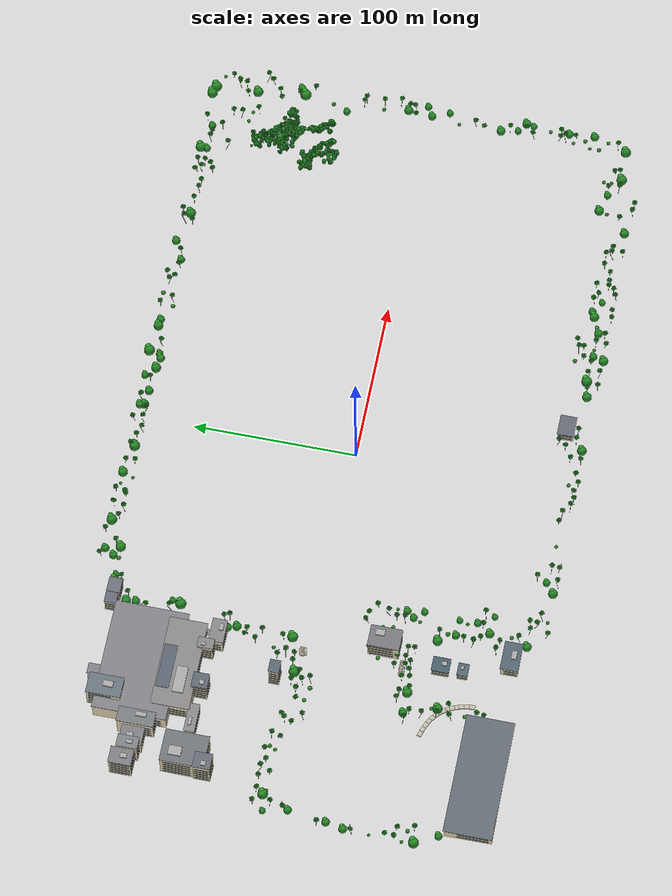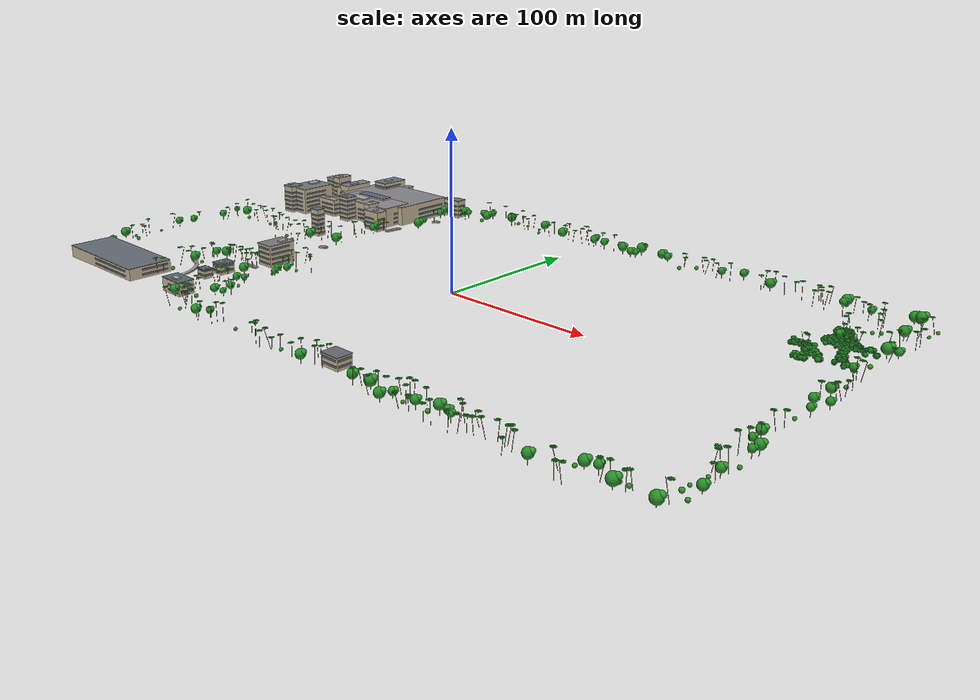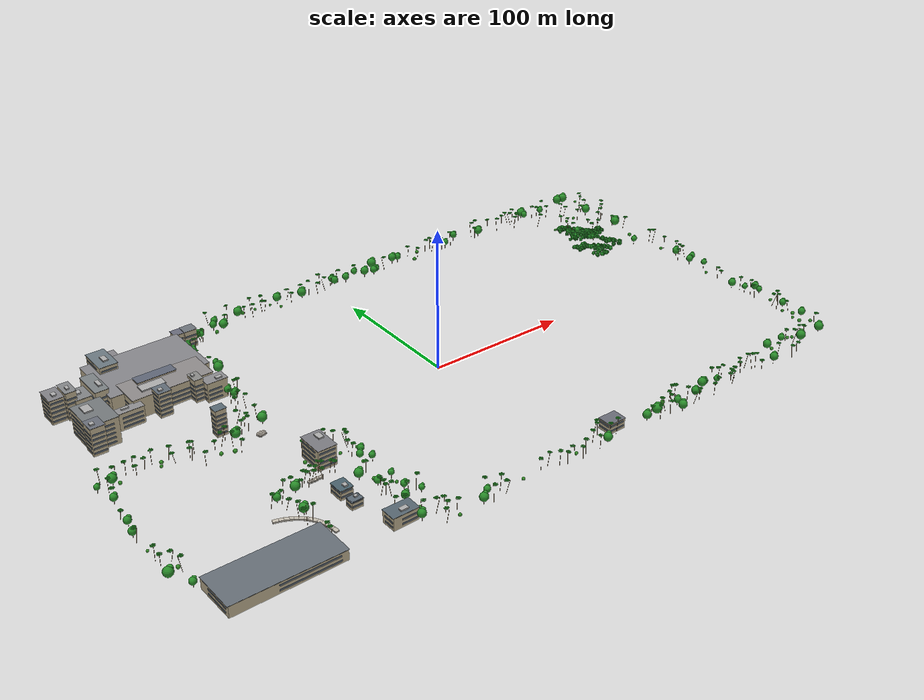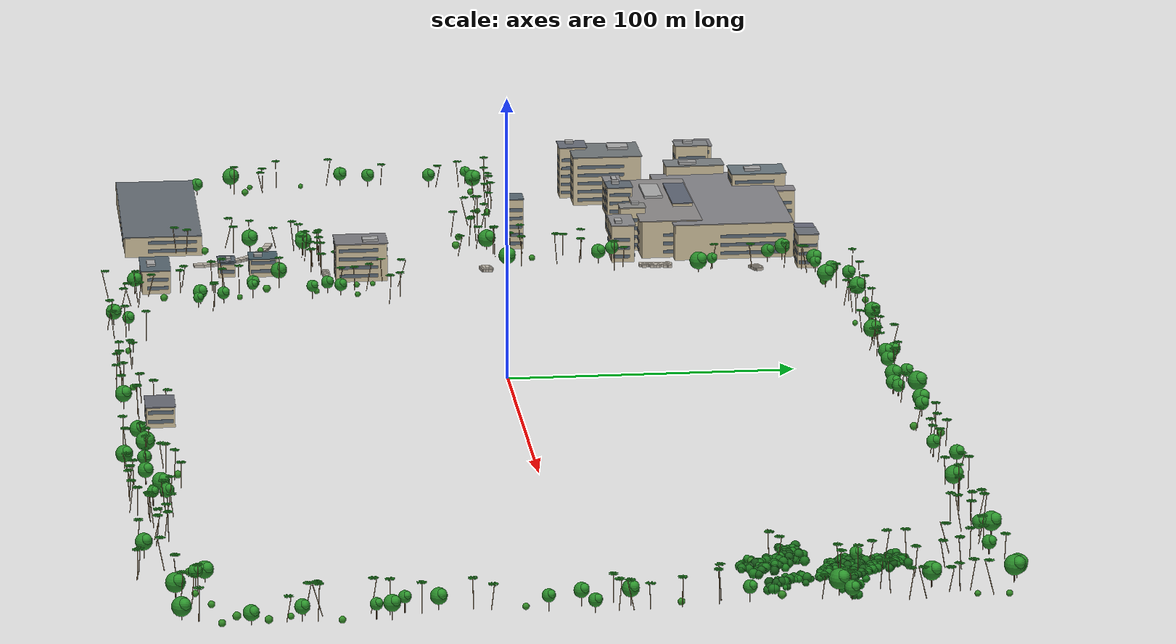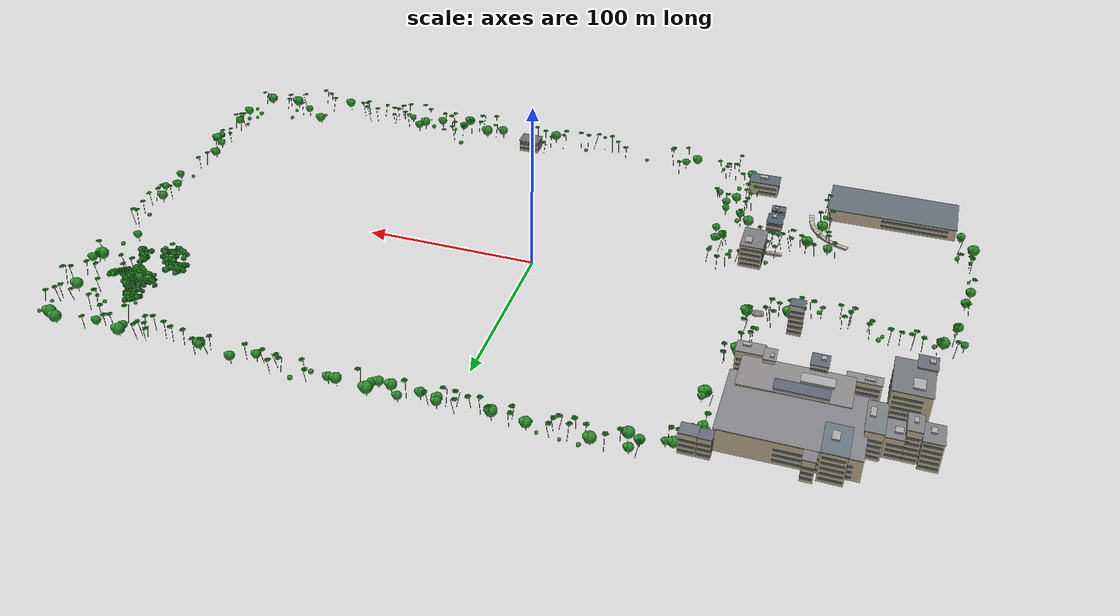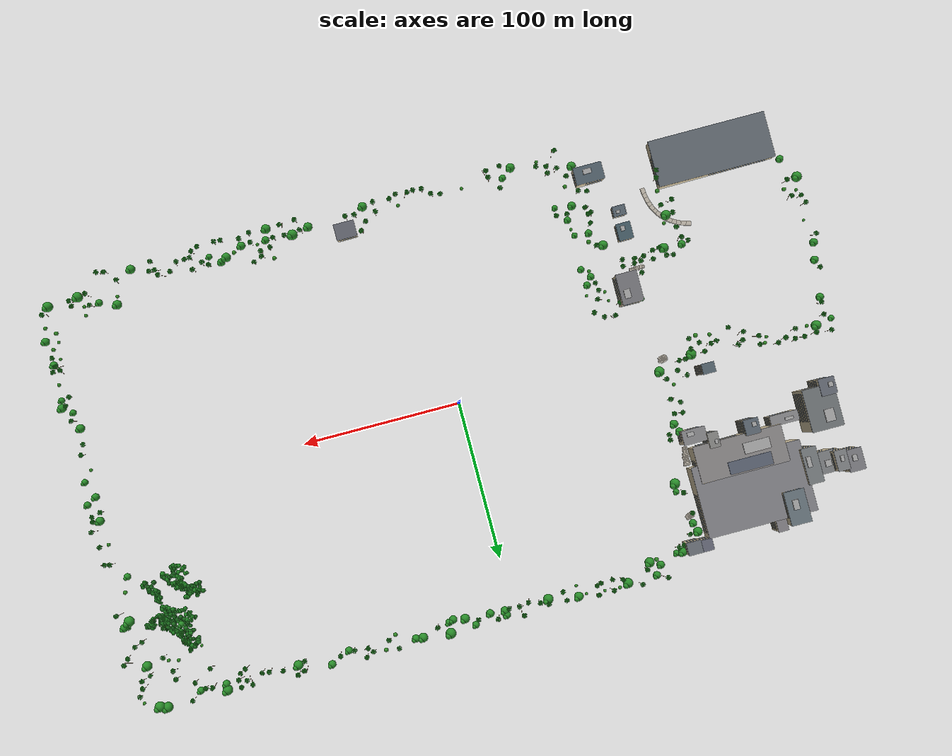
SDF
<sdf version="1.9">
 <world name="dongpo_lake">
  <physics name="4ms" type="dart">
   <max_step_size>0.004</max_step_size>
   <real_time_factor>1.0</real_time_factor>
   <dart><collision_detector>bullet</collision_detector></dart>
  </physics>
  <plugin filename="gz-sim-physics-system" name="gz::sim::systems::Physics"/>
  <plugin filename="gz-sim-user-commands-system" name="gz::sim::systems::UserCommands"/>
  <plugin filename="gz-sim-sensors-system" name="gz::sim::systems::Sensors">
   <render_engine>ogre2</render_engine>
   <disable_on_drained_battery>true</disable_on_drained_battery>
  </plugin>
  <plugin filename="gz-sim-imu-system" name="gz::sim::systems::Imu"/>
  <plugin filename="gz-sim-magnetometer-system" name="gz::sim::systems::Magnetometer"/>
  <plugin filename="gz-sim-forcetorque-system" name="gz::sim::systems::ForceTorque"/>
  <plugin filename="gz-sim-particle-emitter-system" name="gz::sim::systems::ParticleEmitter"/>
  <plugin filename="gz-sim-scene-broadcaster-system" name="gz::sim::systems::SceneBroadcaster"/>
  <plugin filename="gz-sim-contact-system" name="gz::sim::systems::Contact"/>
  <plugin filename="gz-sim-navsat-system" name="gz::sim::systems::NavSat"/>
  <scene>
   <grid>false</grid>
   <ambient>1.0 1.0 1.0</ambient>
   <background>0.8 0.8 0.8</background>
   <fog><color>0.8 0.83 0.86</color><type>linear</type><density>0.0012</density></fog>
  </scene>
  <spherical_coordinates>
   <surface_model>EARTH_WGS84</surface_model>
   <world_frame_orientation>ENU</world_frame_orientation>
   <latitude_deg>20.06108569</latitude_deg>
   <longitude_deg>110.33098135</longitude_deg>
   <elevation>0.0</elevation>
   <heading_deg>0.0</heading_deg>
  </spherical_coordinates>
  <light type="directional" name="sun">
   <pose>0 0 10 0 0 0</pose>
   <diffuse>0.8 0.8 0.8</diffuse>
   <specular>0.2 0.2 0.2 1</specular>
   <attenuation>
    <range>1000</range>
    <constant>0.9</constant>
    <linear>0.01</linear>
    <quadratic>0.001</quadratic>
   </attenuation>
   <direction>-0.5 0.1 -0.9</direction>
  </light>
  <include><name>Shore Trees</name><uri>model://dongpo_shore_trees</uri></include>
  <include><name>Campus Buildings</name><uri>model://dongpo_buildings</uri></include>
  <include><name>Mangroves</name><uri>model://dongpo_mangrove</uri></include>
  <include><name>Jetties</name><uri>model://dongpo_jetties</uri></include>
  <plugin filename="libPublisherPlugin.so" name="vrx::PublisherPlugin">
   <message type="gz.msgs.Param" topic="/vrx/wavefield/parameters" every="2.0">params {
          key: "direction"
          value {
            type: DOUBLE
            double_value: 0.0
          }
        }
        params {
          key: "gain"
          value {
            type: DOUBLE
            double_value: 0.15
          }
        }
        params {
          key: "period"
          value {
            type: DOUBLE
            double_value: 3.0
          }
        }
        params {
          key: "steepness"
          value {
            type: DOUBLE
            double_value: 0.0
          }
        }</message>
  </plugin>
 </world>
</sdf>
